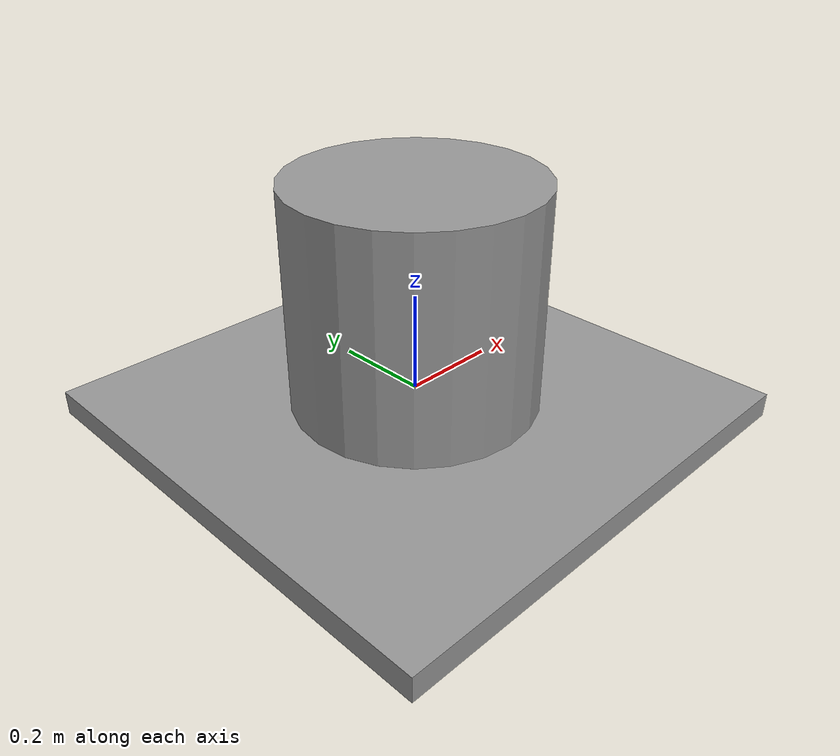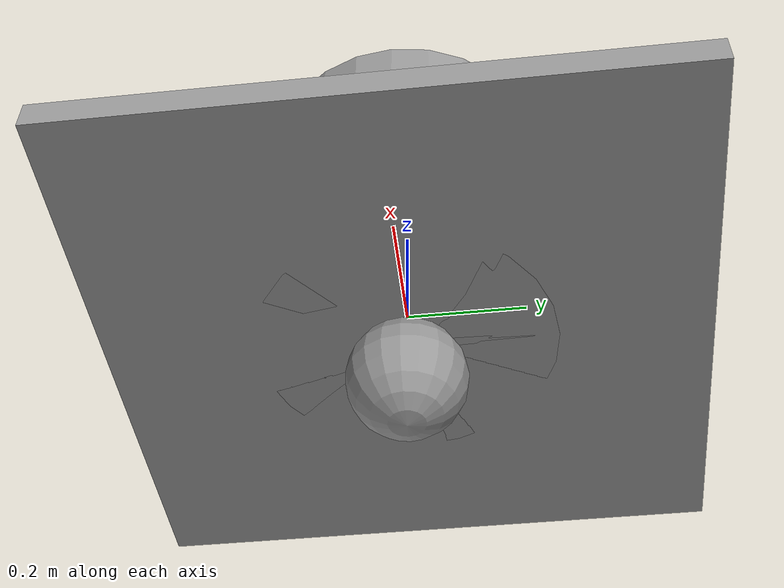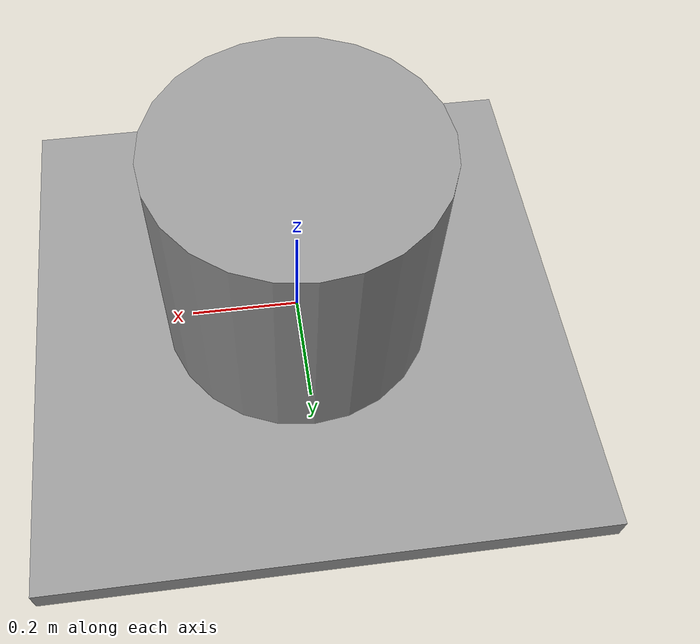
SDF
<?xml version='1.0'?>
<sdf version='1.6'>
  <model name='roboto'>
    <link name='link_1'>
      <pose frame=''>0 0 0.183333 0 -0 0</pose>
      <inertial>
        <mass>0.152425</mass>
        <inertia>
          <ixx>0.00629725</ixx>
          <ixy>0</ixy>
          <ixz>0</ixz>
          <iyy>0.00629725</iyy>
          <iyz>0</iyz>
          <izz>0.00549224</izz>
        </inertia>
        <pose frame=''>0 0 0 0 -0 0</pose>
      </inertial>
      <gravity>1</gravity>
      <self_collide>0</self_collide>
      <kinematic>0</kinematic>
      <visual name='visual'>
        <pose frame=''>0 0 0 0 -0 0</pose>
        <geometry>
          <cylinder>
            <radius>0.25</radius>
            <length>0.5</length>
          </cylinder>
        </geometry>
        <material>
          <lighting>1</lighting>
          <script>
            <uri>file://media/materials/scripts/gazebo.material</uri>
            <name>Gazebo/Grey</name>
          </script>
          <shader type='pixel'>
            <normal_map>__default__</normal_map>
          </shader>
          <ambient>0.3 0.3 0.3 1</ambient>
          <diffuse>0.7 0.7 0.7 1</diffuse>
          <specular>0.01 0.01 0.01 1</specular>
          <emissive>0 0 0 1</emissive>
        </material>
        <transparency>0</transparency>
        <cast_shadows>1</cast_shadows>
      </visual>
      <collision name='collision'>
        <laser_retro>0</laser_retro>
        <max_contacts>10</max_contacts>
        <pose frame=''>0 0 0 0 -0 0</pose>
        <geometry>
          <cylinder>
            <radius>0.25</radius>
            <length>0.5</length>
          </cylinder>
        </geometry>
        <surface>
          <friction>
            <ode>
              <mu>1</mu>
              <mu2>1</mu2>
              <fdir1>0 0 0</fdir1>
              <slip1>0</slip1>
              <slip2>0</slip2>
            </ode>
            <torsional>
              <coefficient>1</coefficient>
              <patch_radius>0</patch_radius>
              <surface_radius>0</surface_radius>
              <use_patch_radius>1</use_patch_radius>
              <ode>
                <slip>0</slip>
              </ode>
            </torsional>
          </friction>
          <bounce>
            <restitution_coefficient>0</restitution_coefficient>
            <threshold>1e+06</threshold>
          </bounce>
          <contact>
            <collide_without_contact>0</collide_without_contact>
            <collide_without_contact_bitmask>1</collide_without_contact_bitmask>
            <collide_bitmask>1</collide_bitmask>
            <ode>
              <soft_cfm>0</soft_cfm>
              <soft_erp>0.2</soft_erp>
              <kp>1e+13</kp>
              <kd>1</kd>
              <max_vel>0.01</max_vel>
              <min_depth>0</min_depth>
            </ode>
            <bullet>
              <split_impulse>1</split_impulse>
              <split_impulse_penetration_threshold>-0.01</split_impulse_penetration_threshold>
              <soft_cfm>0</soft_cfm>
              <soft_erp>0.2</soft_erp>
              <kp>1e+13</kp>
              <kd>1</kd>
            </bullet>
          </contact>
        </surface>
      </collision>
    </link>
    <link name='link_2'>
      <pose frame=''>0 0 -0.041667 0 -0 0</pose>
      <inertial>
        <mass>0.0536353</mass>
        <inertia>
          <ixx>0.00448247</ixx>
          <ixy>0</ixy>
          <ixz>0</ixz>
          <iyy>0.00448247</iyy>
          <iyz>0</iyz>
          <izz>0.00893922</izz>
        </inertia>
        <pose frame=''>0 0 0 0 -0 0</pose>
      </inertial>
      <gravity>1</gravity>
      <self_collide>0</self_collide>
      <kinematic>0</kinematic>
      <visual name='visual'>
        <pose frame=''>0 0 0 0 -0 0</pose>
        <geometry>
          <box>
            <size>1 1 0.05</size>
          </box>
        </geometry>
        <material>
          <lighting>1</lighting>
          <script>
            <uri>file://media/materials/scripts/gazebo.material</uri>
            <name>Gazebo/Grey</name>
          </script>
          <shader type='pixel'>
            <normal_map>__default__</normal_map>
          </shader>
          <ambient>0.3 0.3 0.3 1</ambient>
          <diffuse>0.7 0.7 0.7 1</diffuse>
          <specular>0.01 0.01 0.01 1</specular>
          <emissive>0 0 0 1</emissive>
        </material>
        <transparency>0</transparency>
        <cast_shadows>1</cast_shadows>
      </visual>
      <collision name='collision'>
        <laser_retro>0</laser_retro>
        <max_contacts>10</max_contacts>
        <pose frame=''>0 0 0 0 -0 0</pose>
        <geometry>
          <box>
            <size>1 1 0.05</size>
          </box>
        </geometry>
        <surface>
          <friction>
            <ode>
              <mu>1</mu>
              <mu2>1</mu2>
              <fdir1>0 0 0</fdir1>
              <slip1>0</slip1>
              <slip2>0</slip2>
            </ode>
            <torsional>
              <coefficient>1</coefficient>
              <patch_radius>0</patch_radius>
              <surface_radius>0</surface_radius>
              <use_patch_radius>1</use_patch_radius>
              <ode>
                <slip>0</slip>
              </ode>
            </torsional>
          </friction>
          <bounce>
            <restitution_coefficient>0</restitution_coefficient>
            <threshold>1e+06</threshold>
          </bounce>
          <contact>
            <collide_without_contact>0</collide_without_contact>
            <collide_without_contact_bitmask>1</collide_without_contact_bitmask>
            <collide_bitmask>1</collide_bitmask>
            <ode>
              <soft_cfm>0</soft_cfm>
              <soft_erp>0.2</soft_erp>
              <kp>1e+13</kp>
              <kd>1</kd>
              <max_vel>0.01</max_vel>
              <min_depth>0</min_depth>
            </ode>
            <bullet>
              <split_impulse>1</split_impulse>
              <split_impulse_penetration_threshold>-0.01</split_impulse_penetration_threshold>
              <soft_cfm>0</soft_cfm>
              <soft_erp>0.2</soft_erp>
              <kp>1e+13</kp>
              <kd>1</kd>
            </bullet>
          </contact>
        </surface>
      </collision>
    </link>
    <link name='link_3'>
      <pose frame=''>0 0 -0.141667 0 -0 0</pose>
      <inertial>
        <mass>0.0276939</mass>
        <inertia>
          <ixx>0.00025351</ixx>
          <ixy>0</ixy>
          <ixz>0</ixz>
          <iyy>0.00025351</iyy>
          <iyz>0</iyz>
          <izz>0.00025351</izz>
        </inertia>
        <pose frame=''>0 0 0 0 -0 0</pose>
      </inertial>
      <gravity>1</gravity>
      <self_collide>0</self_collide>
      <kinematic>0</kinematic>
      <visual name='visual'>
        <pose frame=''>0 0 0 0 -0 0</pose>
        <geometry>
          <sphere>
            <radius>0.1</radius>
          </sphere>
        </geometry>
        <material>
          <lighting>1</lighting>
          <script>
            <uri>file://media/materials/scripts/gazebo.material</uri>
            <name>Gazebo/Grey</name>
          </script>
          <shader type='pixel'>
            <normal_map>__default__</normal_map>
          </shader>
          <ambient>0.3 0.3 0.3 1</ambient>
          <diffuse>0.7 0.7 0.7 1</diffuse>
          <specular>0.01 0.01 0.01 1</specular>
          <emissive>0 0 0 1</emissive>
        </material>
        <transparency>0</transparency>
        <cast_shadows>1</cast_shadows>
      </visual>
      <collision name='collision'>
        <laser_retro>0</laser_retro>
        <max_contacts>10</max_contacts>
        <pose frame=''>0 0 0 0 -0 0</pose>
        <geometry>
          <sphere>
            <radius>0.1</radius>
          </sphere>
        </geometry>
        <surface>
          <friction>
            <ode>
              <mu>1</mu>
              <mu2>1</mu2>
              <fdir1>0 0 0</fdir1>
              <slip1>0</slip1>
              <slip2>0</slip2>
            </ode>
            <torsional>
              <coefficient>1</coefficient>
              <patch_radius>0</patch_radius>
              <surface_radius>0</surface_radius>
              <use_patch_radius>1</use_patch_radius>
              <ode>
                <slip>0</slip>
              </ode>
            </torsional>
          </friction>
          <bounce>
            <restitution_coefficient>0</restitution_coefficient>
            <threshold>1e+06</threshold>
          </bounce>
          <contact>
            <collide_without_contact>0</collide_without_contact>
            <collide_without_contact_bitmask>1</collide_without_contact_bitmask>
            <collide_bitmask>1</collide_bitmask>
            <ode>
              <soft_cfm>0</soft_cfm>
              <soft_erp>0.2</soft_erp>
              <kp>1e+13</kp>
              <kd>1</kd>
              <max_vel>0.01</max_vel>
              <min_depth>0</min_depth>
            </ode>
            <bullet>
              <split_impulse>1</split_impulse>
              <split_impulse_penetration_threshold>-0.01</split_impulse_penetration_threshold>
              <soft_cfm>0</soft_cfm>
              <soft_erp>0.2</soft_erp>
              <kp>1e+13</kp>
              <kd>1</kd>
            </bullet>
          </contact>
        </surface>
      </collision>
    </link>
    <joint name='link_2_JOINT_0' type='ball'>
      <parent>link_2</parent>
      <child>link_3</child>
      <pose frame=''>0 0 0 0 -0 0</pose>
      <physics>
        <ode>
          <limit>
            <cfm>0</cfm>
            <erp>0.2</erp>
          </limit>
          <suspension>
            <cfm>0</cfm>
            <erp>0.2</erp>
          </suspension>
        </ode>
      </physics>
    </joint>
    <joint name='link_2_JOINT_1' type='universal'>
      <parent>link_2</parent>
      <child>link_1</child>
      <pose frame=''>0 0 0 0 -0 0</pose>
      <axis>
        <xyz>1 0 0</xyz>
        <use_parent_model_frame>0</use_parent_model_frame>
        <limit>
          <lower>-1.79769e+308</lower>
          <upper>1.79769e+308</upper>
          <effort>-1</effort>
          <velocity>-1</velocity>
        </limit>
        <dynamics>
          <spring_reference>0</spring_reference>
          <spring_stiffness>0</spring_stiffness>
          <damping>0</damping>
        </dynamics>
      </axis>
      <axis2>
        <xyz>0 1 0</xyz>
        <use_parent_model_frame>0</use_parent_model_frame>
        <dynamics>
          <spring_reference>0</spring_reference>
          <spring_stiffness>0</spring_stiffness>
          <damping>0</damping>
        </dynamics>
        <limit>
          <lower>-1.79769e+308</lower>
          <upper>1.79769e+308</upper>
          <effort>-1</effort>
          <velocity>-1</velocity>
        </limit>
      </axis2>
      <physics>
        <ode>
          <limit>
            <cfm>0</cfm>
            <erp>0.2</erp>
          </limit>
          <suspension>
            <cfm>0</cfm>
            <erp>0.2</erp>
          </suspension>
        </ode>
      </physics>
    </joint>
    <static>0</static>
    <allow_auto_disable>1</allow_auto_disable>
  </model>
</sdf>
